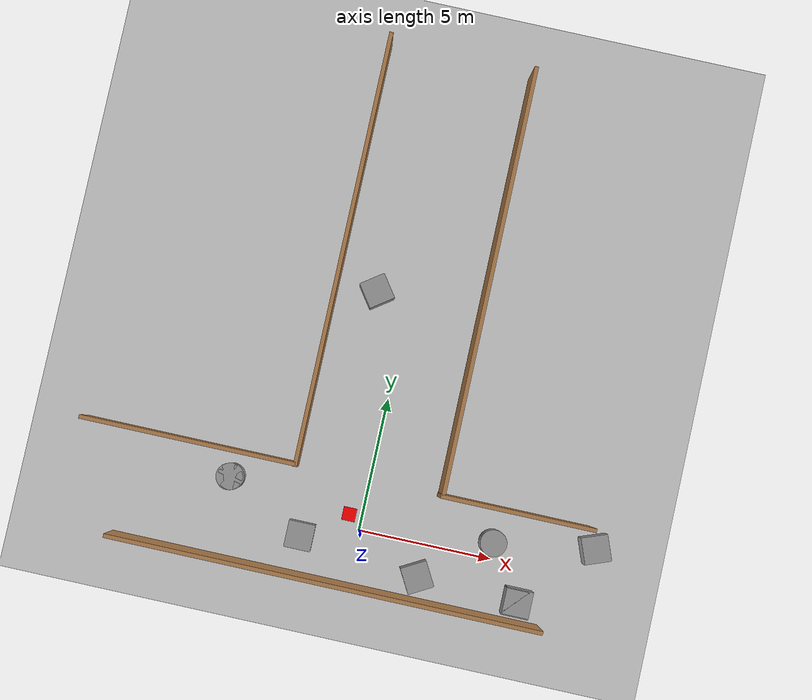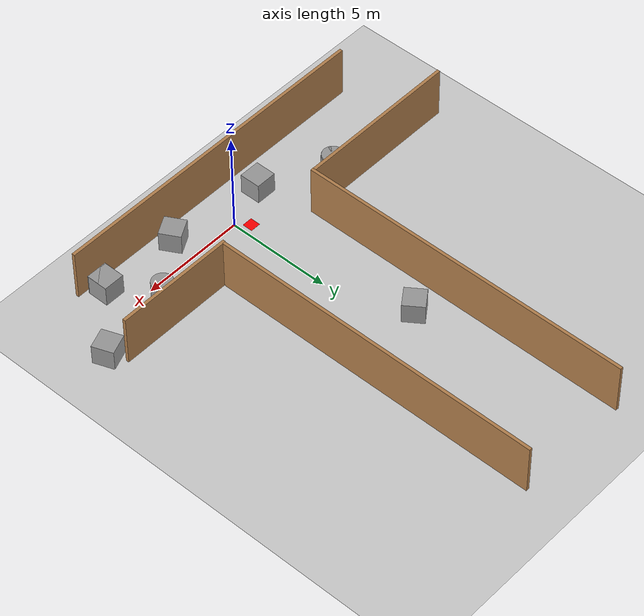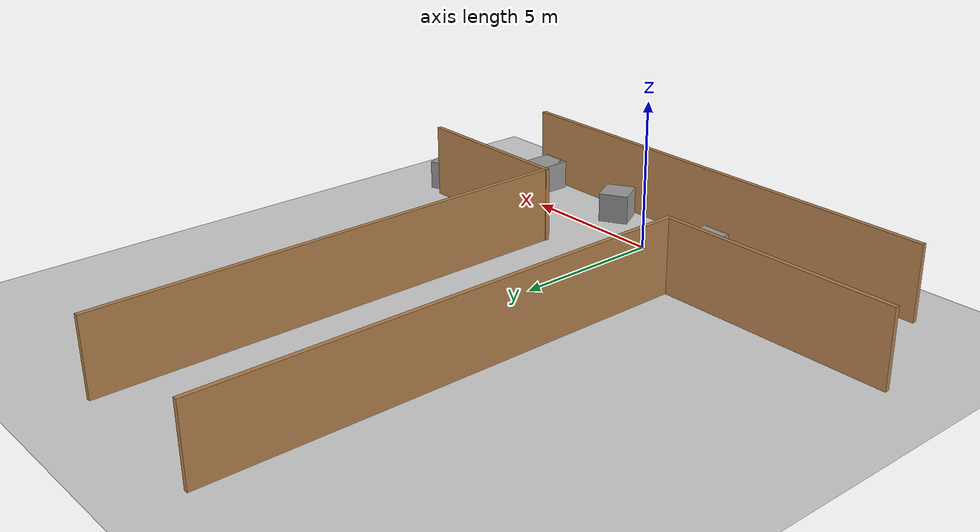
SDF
<sdf version="1.6">
 <world name="default">
  <light name="sun" type="directional">
   <pose>0 0 10 0 -0 0</pose>
   <diffuse>0.8 0.8 0.8 1</diffuse>
   <specular>0.2 0.2 0.2 1</specular>
   <attenuation>
    <range>1000</range>
    <constant>0.9</constant>
    <linear>0.01</linear>
    <quadratic>0.001</quadratic>
   </attenuation>
   <direction>-0.5 0.1 -0.9</direction>
  </light>
  <model name="ground_plane">
   <static>1</static>
   <link name="link">
    <collision name="collision">
     <geometry><plane><normal>0 0 1</normal><size>100 100</size></plane></geometry>
     <surface><friction><ode><mu>100</mu><mu2>50</mu2></ode></friction></surface>
    </collision>
    <visual name="visual">
     <cast_shadows>0</cast_shadows>
     <geometry><plane><normal>0 0 1</normal><size>100 100</size></plane></geometry>
     <material>
      <script><uri>file://media/materials/scripts/gazebo.material</uri><name>Gazebo/Grey</name></script>
     </material>
    </visual>
    <velocity_decay><linear>0</linear><angular>0</angular></velocity_decay>
   </link>
  </model>
  <physics name="default_physics" default="0" type="ode">
   <max_step_size>0.001</max_step_size>
   <real_time_factor>1</real_time_factor>
   <real_time_update_rate>1000</real_time_update_rate>
  </physics>
  <scene><ambient>0.4 0.4 0.4 1</ambient><background>0.7 0.7 0.7 1</background><shadows>1</shadows></scene>
  <spherical_coordinates>
   <surface_model>EARTH_WGS84</surface_model>
   <latitude_deg>0</latitude_deg>
   <longitude_deg>0</longitude_deg>
   <elevation>0</elevation>
   <heading_deg>0</heading_deg>
  </spherical_coordinates>
  <gravity>0 0 -9.8</gravity>
  <magnetic_field>6e-06 2.3e-05 -4.2e-05</magnetic_field>
  <atmosphere type="adiabatic"/>
  <model name="corridor">
   <pose>-1.25811 7.9813 0 0 -0 0</pose>
   <link name="Wall_0">
    <collision name="Wall_0_Collision">
     <geometry><box><size>8 0.15 2.5</size></box></geometry>
     <pose>0 0 1.25 0 -0 0</pose>
    </collision>
    <visual name="Wall_0_Visual">
     <pose>0 0 1.25 0 -0 0</pose>
     <geometry><box><size>8 0.15 2.5</size></box></geometry>
     <material>
      <script><uri>file://media/materials/scripts/gazebo.material</uri><name>Gazebo/Wood</name></script>
      <ambient>1 1 1 1</ambient>
     </material>
     <meta><layer>0</layer></meta>
    </visual>
    <pose>-5.56307 -6.0522 0 0 -0 3.14159</pose>
   </link>
   <link name="Wall_10">
    <collision name="Wall_10_Collision">
     <geometry><box><size>16.25 0.15 2.5</size></box></geometry>
     <pose>0 0 1.25 0 -0 0</pose>
    </collision>
    <visual name="Wall_10_Visual">
     <pose>0 0 1.25 0 -0 0</pose>
     <geometry><box><size>16.25 0.15 2.5</size></box></geometry>
     <material>
      <script><uri>file://media/materials/scripts/gazebo.material</uri><name>Gazebo/Wood</name></script>
      <ambient>1 1 1 1</ambient>
     </material>
     <meta><layer>0</layer></meta>
    </visual>
    <pose>-1.55489 1.98871 0 0 -0 1.5708</pose>
   </link>
   <link name="Wall_14">
    <collision name="Wall_14_Collision">
     <geometry><box><size>16 0.15 2.5</size></box></geometry>
     <pose>0 0 1.25 0 -0 0</pose>
    </collision>
    <visual name="Wall_14_Visual">
     <pose>0 0 1.25 0 -0 0</pose>
     <geometry><box><size>16 0.15 2.5</size></box></geometry>
     <material>
      <script><uri>file://media/materials/scripts/gazebo.material</uri><name>Gazebo/Wood</name></script>
      <ambient>1 1 1 1</ambient>
     </material>
     <meta><layer>0</layer></meta>
    </visual>
    <pose>3.91007 2.01717 0 0 0 -1.5708</pose>
   </link>
   <link name="Wall_16">
    <collision name="Wall_16_Collision">
     <geometry><box><size>5.75 0.15 2.5</size></box></geometry>
     <pose>0 0 1.25 0 -0 0</pose>
    </collision>
    <visual name="Wall_16_Visual">
     <pose>0 0 1.25 0 -0 0</pose>
     <geometry><box><size>5.75 0.15 2.5</size></box></geometry>
     <material>
      <script><uri>file://media/materials/scripts/gazebo.material</uri><name>Gazebo/Wood</name></script>
      <ambient>1 1 1 1</ambient>
     </material>
     <meta><layer>0</layer></meta>
    </visual>
    <pose>6.68807 -6.03492 0 0 -0 0</pose>
   </link>
   <link name="Wall_4">
    <collision name="Wall_4_Collision">
     <geometry><box><size>16.176 0.15 2.5</size></box></geometry>
     <pose>0 0 1.25 0 -0 0</pose>
    </collision>
    <visual name="Wall_4_Visual">
     <pose>0 0 1.25 0 -0 0</pose>
     <geometry><box><size>16.176 0.15 2.5</size></box></geometry>
     <material>
      <script><uri>file://media/materials/scripts/gazebo.material</uri><name>Gazebo/Wood</name></script>
      <ambient>1 1 1 1</ambient>
     </material>
     <meta><layer>0</layer></meta>
    </visual>
    <pose>0.349457 -10.0387 0 0 -0 0</pose>
   </link>
   <static>1</static>
  </model>
  <model name="unit_box_5">
   <link name="link">
    <inertial>
     <mass>1</mass>
     <inertia>
      <ixx>0.166667</ixx>
      <ixy>0</ixy>
      <ixz>0</ixz>
      <iyy>0.166667</iyy>
      <iyz>0</iyz>
      <izz>0.166667</izz>
     </inertia>
    </inertial>
    <visual name="visual">
     <geometry><box><size>1 1 1</size></box></geometry>
     <material>
      <script><name>Gazebo/Grey</name><uri>file://media/materials/scripts/gazebo.material</uri></script>
      <shader type="pixel"><normal_map>__default__</normal_map></shader>
      <ambient>0.3 0.3 0.3 1</ambient>
      <diffuse>0.7 0.7 0.7 1</diffuse>
      <specular>0.01 0.01 0.01 1</specular>
      <emissive>0 0 0 1</emissive>
     </material>
    </visual>
    <collision name="collision">
     <geometry><box><size>1 1 1</size></box></geometry>
     <surface>
      <friction>
       <ode><mu>1</mu><mu2>1</mu2><fdir1>0 0 0</fdir1><slip1>0</slip1><slip2>0</slip2></ode>
       <torsional>
        <coefficient>1</coefficient>
        <patch_radius>0</patch_radius>
        <surface_radius>0</surface_radius>
        <use_patch_radius>1</use_patch_radius>
        <ode><slip>0</slip></ode>
       </torsional>
      </friction>
      <bounce><restitution_coefficient>0</restitution_coefficient><threshold>1e+06</threshold></bounce>
      <contact>
       <collide_without_contact>0</collide_without_contact>
       <collide_without_contact_bitmask>1</collide_without_contact_bitmask>
       <collide_bitmask>1</collide_bitmask>
       <ode>
        <soft_cfm>0</soft_cfm>
        <soft_erp>0.2</soft_erp>
        <kp>1e+13</kp>
        <kd>1</kd>
        <max_vel>0.01</max_vel>
        <min_depth>0</min_depth>
       </ode>
       <bullet>
        <split_impulse>1</split_impulse>
        <split_impulse_penetration_threshold>-0.01</split_impulse_penetration_threshold>
        <soft_cfm>0</soft_cfm>
        <soft_erp>0.2</soft_erp>
        <kp>1e+13</kp>
        <kd>1</kd>
       </bullet>
      </contact>
     </surface>
    </collision>
   </link>
   <link name="link_1">
    <pose>-0.003886 -0.034962 -0 0 -0 6e-06</pose>
    <inertial>
     <mass>1</mass>
     <inertia>
      <ixx>0.166667</ixx>
      <ixy>0</ixy>
      <ixz>0</ixz>
      <iyy>0.166667</iyy>
      <iyz>0</iyz>
      <izz>0.166667</izz>
     </inertia>
    </inertial>
    <visual name="visual">
     <geometry><box><size>1 1 1</size></box></geometry>
     <material>
      <lighting>1</lighting>
      <script><uri>file://media/materials/scripts/gazebo.material</uri><name>Gazebo/Grey</name></script>
      <shader type="pixel"/>
      <ambient>0.3 0.3 0.3 1</ambient>
      <diffuse>0.7 0.7 0.7 1</diffuse>
      <specular>0.01 0.01 0.01 1</specular>
      <emissive>0 0 0 1</emissive>
     </material>
    </visual>
    <collision name="collision">
     <geometry><box><size>1 1 1</size></box></geometry>
     <surface>
      <friction>
       <ode><mu>1</mu><mu2>1</mu2><fdir1>0 0 0</fdir1><slip1>0</slip1><slip2>0</slip2></ode>
       <torsional>
        <coefficient>1</coefficient>
        <patch_radius>0</patch_radius>
        <surface_radius>0</surface_radius>
        <use_patch_radius>1</use_patch_radius>
        <ode><slip>0</slip></ode>
       </torsional>
      </friction>
      <bounce><restitution_coefficient>0</restitution_coefficient><threshold>1e+06</threshold></bounce>
      <contact>
       <collide_without_contact>0</collide_without_contact>
       <collide_without_contact_bitmask>1</collide_without_contact_bitmask>
       <collide_bitmask>1</collide_bitmask>
       <ode>
        <soft_cfm>0</soft_cfm>
        <soft_erp>0.2</soft_erp>
        <kp>1e+13</kp>
        <kd>1</kd>
        <max_vel>0.01</max_vel>
        <min_depth>0</min_depth>
       </ode>
       <bullet>
        <split_impulse>1</split_impulse>
        <split_impulse_penetration_threshold>-0.01</split_impulse_penetration_threshold>
        <soft_cfm>0</soft_cfm>
        <soft_erp>0.2</soft_erp>
        <kp>1e+13</kp>
        <kd>1</kd>
       </bullet>
      </contact>
     </surface>
    </collision>
   </link>
   <link name="link_2">
    <pose>2.41327 2.53439 0 0 -0 0.359193</pose>
    <inertial>
     <mass>1</mass>
     <inertia>
      <ixx>0.166667</ixx>
      <ixy>0</ixy>
      <ixz>0</ixz>
      <iyy>0.166667</iyy>
      <iyz>0</iyz>
      <izz>0.166667</izz>
     </inertia>
    </inertial>
    <visual name="visual">
     <geometry><box><size>1 1 1</size></box></geometry>
     <material>
      <lighting>1</lighting>
      <script><uri>file://media/materials/scripts/gazebo.material</uri><name>Gazebo/Grey</name></script>
      <shader type="pixel"/>
      <ambient>0.3 0.3 0.3 1</ambient>
      <diffuse>0.7 0.7 0.7 1</diffuse>
      <specular>0.01 0.01 0.01 1</specular>
      <emissive>0 0 0 1</emissive>
     </material>
    </visual>
    <collision name="collision">
     <geometry><box><size>1 1 1</size></box></geometry>
     <surface>
      <friction>
       <ode><mu>1</mu><mu2>1</mu2><fdir1>0 0 0</fdir1><slip1>0</slip1><slip2>0</slip2></ode>
       <torsional>
        <coefficient>1</coefficient>
        <patch_radius>0</patch_radius>
        <surface_radius>0</surface_radius>
        <use_patch_radius>1</use_patch_radius>
        <ode><slip>0</slip></ode>
       </torsional>
      </friction>
      <bounce><restitution_coefficient>0</restitution_coefficient><threshold>1e+06</threshold></bounce>
      <contact>
       <collide_without_contact>0</collide_without_contact>
       <collide_without_contact_bitmask>1</collide_without_contact_bitmask>
       <collide_bitmask>1</collide_bitmask>
       <ode>
        <soft_cfm>0</soft_cfm>
        <soft_erp>0.2</soft_erp>
        <kp>1e+13</kp>
        <kd>1</kd>
        <max_vel>0.01</max_vel>
        <min_depth>0</min_depth>
       </ode>
       <bullet>
        <split_impulse>1</split_impulse>
        <split_impulse_penetration_threshold>-0.01</split_impulse_penetration_threshold>
        <soft_cfm>0</soft_cfm>
        <soft_erp>0.2</soft_erp>
        <kp>1e+13</kp>
        <kd>1</kd>
       </bullet>
      </contact>
     </surface>
    </collision>
   </link>
   <link name="link_3">
    <pose>-3.80754 0.104796 -0 0 -0 0.510595</pose>
    <inertial>
     <mass>1</mass>
     <inertia>
      <ixx>0.166667</ixx>
      <ixy>0</ixy>
      <ixz>0</ixz>
      <iyy>0.166667</iyy>
      <iyz>0</iyz>
      <izz>0.166667</izz>
     </inertia>
    </inertial>
    <visual name="visual">
     <geometry><box><size>1 1 1</size></box></geometry>
     <material>
      <lighting>1</lighting>
      <script><uri>file://media/materials/scripts/gazebo.material</uri><name>Gazebo/Grey</name></script>
      <shader type="pixel"/>
      <ambient>0.3 0.3 0.3 1</ambient>
      <diffuse>0.7 0.7 0.7 1</diffuse>
      <specular>0.01 0.01 0.01 1</specular>
      <emissive>0 0 0 1</emissive>
     </material>
    </visual>
    <collision name="collision">
     <geometry><box><size>1 1 1</size></box></geometry>
     <surface>
      <friction>
       <ode><mu>1</mu><mu2>1</mu2><fdir1>0 0 0</fdir1><slip1>0</slip1><slip2>0</slip2></ode>
       <torsional>
        <coefficient>1</coefficient>
        <patch_radius>0</patch_radius>
        <surface_radius>0</surface_radius>
        <use_patch_radius>1</use_patch_radius>
        <ode><slip>0</slip></ode>
       </torsional>
      </friction>
      <bounce><restitution_coefficient>0</restitution_coefficient><threshold>1e+06</threshold></bounce>
      <contact>
       <collide_without_contact>0</collide_without_contact>
       <collide_without_contact_bitmask>1</collide_without_contact_bitmask>
       <collide_bitmask>1</collide_bitmask>
       <ode>
        <soft_cfm>0</soft_cfm>
        <soft_erp>0.2</soft_erp>
        <kp>1e+13</kp>
        <kd>1</kd>
        <max_vel>0.01</max_vel>
        <min_depth>0</min_depth>
       </ode>
       <bullet>
        <split_impulse>1</split_impulse>
        <split_impulse_penetration_threshold>-0.01</split_impulse_penetration_threshold>
        <soft_cfm>0</soft_cfm>
        <soft_erp>0.2</soft_erp>
        <kp>1e+13</kp>
        <kd>1</kd>
       </bullet>
      </contact>
     </surface>
    </collision>
   </link>
   <link name="link_4">
    <pose>-8.36291 0.665719 -0 0 -0 6e-06</pose>
    <inertial>
     <mass>1</mass>
     <inertia>
      <ixx>0.166667</ixx>
      <ixy>0</ixy>
      <ixz>0</ixz>
      <iyy>0.166667</iyy>
      <iyz>0</iyz>
      <izz>0.166667</izz>
     </inertia>
    </inertial>
    <visual name="visual">
     <geometry><box><size>1 1 1</size></box></geometry>
     <material>
      <lighting>1</lighting>
      <script><uri>file://media/materials/scripts/gazebo.material</uri><name>Gazebo/Grey</name></script>
      <shader type="pixel"/>
      <ambient>0.3 0.3 0.3 1</ambient>
      <diffuse>0.7 0.7 0.7 1</diffuse>
      <specular>0.01 0.01 0.01 1</specular>
      <emissive>0 0 0 1</emissive>
     </material>
    </visual>
    <collision name="collision">
     <geometry><box><size>1 1 1</size></box></geometry>
     <surface>
      <friction>
       <ode><mu>1</mu><mu2>1</mu2><fdir1>0 0 0</fdir1><slip1>0</slip1><slip2>0</slip2></ode>
       <torsional>
        <coefficient>1</coefficient>
        <patch_radius>0</patch_radius>
        <surface_radius>0</surface_radius>
        <use_patch_radius>1</use_patch_radius>
        <ode><slip>0</slip></ode>
       </torsional>
      </friction>
      <bounce><restitution_coefficient>0</restitution_coefficient><threshold>1e+06</threshold></bounce>
      <contact>
       <collide_without_contact>0</collide_without_contact>
       <collide_without_contact_bitmask>1</collide_without_contact_bitmask>
       <collide_bitmask>1</collide_bitmask>
       <ode>
        <soft_cfm>0</soft_cfm>
        <soft_erp>0.2</soft_erp>
        <kp>1e+13</kp>
        <kd>1</kd>
        <max_vel>0.01</max_vel>
        <min_depth>0</min_depth>
       </ode>
       <bullet>
        <split_impulse>1</split_impulse>
        <split_impulse_penetration_threshold>-0.01</split_impulse_penetration_threshold>
        <soft_cfm>0</soft_cfm>
        <soft_erp>0.2</soft_erp>
        <kp>1e+13</kp>
        <kd>1</kd>
       </bullet>
      </contact>
     </surface>
    </collision>
   </link>
   <link name="link_5">
    <pose>-7.52388 10.1294 -0 0 0 -0.952427</pose>
    <inertial>
     <mass>1</mass>
     <inertia>
      <ixx>0.166667</ixx>
      <ixy>0</ixy>
      <ixz>0</ixz>
      <iyy>0.166667</iyy>
      <iyz>0</iyz>
      <izz>0.166667</izz>
     </inertia>
    </inertial>
    <visual name="visual">
     <geometry><box><size>1 1 1</size></box></geometry>
     <material>
      <lighting>1</lighting>
      <script><uri>file://media/materials/scripts/gazebo.material</uri><name>Gazebo/Grey</name></script>
      <shader type="pixel"><normal_map>__default__</normal_map></shader>
      <ambient>0.3 0.3 0.3 1</ambient>
      <diffuse>0.7 0.7 0.7 1</diffuse>
      <specular>0.01 0.01 0.01 1</specular>
      <emissive>0 0 0 1</emissive>
     </material>
    </visual>
    <collision name="collision">
     <geometry><box><size>1 1 1</size></box></geometry>
     <surface>
      <friction>
       <ode><mu>1</mu><mu2>1</mu2><fdir1>0 0 0</fdir1><slip1>0</slip1><slip2>0</slip2></ode>
       <torsional>
        <coefficient>1</coefficient>
        <patch_radius>0</patch_radius>
        <surface_radius>0</surface_radius>
        <use_patch_radius>1</use_patch_radius>
        <ode><slip>0</slip></ode>
       </torsional>
      </friction>
      <bounce><restitution_coefficient>0</restitution_coefficient><threshold>1e+06</threshold></bounce>
      <contact>
       <collide_without_contact>0</collide_without_contact>
       <collide_without_contact_bitmask>1</collide_without_contact_bitmask>
       <collide_bitmask>1</collide_bitmask>
       <ode>
        <soft_cfm>0</soft_cfm>
        <soft_erp>0.2</soft_erp>
        <kp>1e+13</kp>
        <kd>1</kd>
        <max_vel>0.01</max_vel>
        <min_depth>0</min_depth>
       </ode>
       <bullet>
        <split_impulse>1</split_impulse>
        <split_impulse_penetration_threshold>-0.01</split_impulse_penetration_threshold>
        <soft_cfm>0</soft_cfm>
        <soft_erp>0.2</soft_erp>
        <kp>1e+13</kp>
        <kd>1</kd>
       </bullet>
      </contact>
     </surface>
    </collision>
   </link>
   <static>0</static>
   <pose>6.23733 -1.29492 0.5 0 0 -6e-06</pose>
  </model>
  <model name="unit_cylinder_2">
   <link name="link">
    <inertial>
     <mass>1</mass>
     <inertia><ixx>0.145833</ixx><ixy>0</ixy><ixz>0</ixz><iyy>0.145833</iyy><iyz>0</iyz><izz>0.125</izz></inertia>
    </inertial>
    <visual name="visual">
     <geometry><cylinder><radius>0.5</radius><length>1</length></cylinder></geometry>
     <material>
      <script><name>Gazebo/Grey</name><uri>file://media/materials/scripts/gazebo.material</uri></script>
      <shader type="pixel"/>
      <ambient>0.3 0.3 0.3 1</ambient>
      <diffuse>0.7 0.7 0.7 1</diffuse>
      <specular>0.01 0.01 0.01 1</specular>
      <emissive>0 0 0 1</emissive>
     </material>
    </visual>
    <collision name="collision">
     <geometry><cylinder><radius>0.5</radius><length>1</length></cylinder></geometry>
     <surface>
      <friction>
       <ode><mu>1</mu><mu2>1</mu2><fdir1>0 0 0</fdir1><slip1>0</slip1><slip2>0</slip2></ode>
       <torsional>
        <coefficient>1</coefficient>
        <patch_radius>0</patch_radius>
        <surface_radius>0</surface_radius>
        <use_patch_radius>1</use_patch_radius>
        <ode><slip>0</slip></ode>
       </torsional>
      </friction>
      <bounce><restitution_coefficient>0</restitution_coefficient><threshold>1e+06</threshold></bounce>
      <contact>
       <collide_without_contact>0</collide_without_contact>
       <collide_without_contact_bitmask>1</collide_without_contact_bitmask>
       <collide_bitmask>1</collide_bitmask>
       <ode>
        <soft_cfm>0</soft_cfm>
        <soft_erp>0.2</soft_erp>
        <kp>1e+13</kp>
        <kd>1</kd>
        <max_vel>0.01</max_vel>
        <min_depth>0</min_depth>
       </ode>
       <bullet>
        <split_impulse>1</split_impulse>
        <split_impulse_penetration_threshold>-0.01</split_impulse_penetration_threshold>
        <soft_cfm>0</soft_cfm>
        <soft_erp>0.2</soft_erp>
        <kp>1e+13</kp>
        <kd>1</kd>
       </bullet>
      </contact>
     </surface>
    </collision>
   </link>
   <link name="link_7">
    <pose>0.050684 0.020416 -0 0 -0 0</pose>
    <inertial>
     <mass>1</mass>
     <inertia><ixx>0.145833</ixx><ixy>0</ixy><ixz>0</ixz><iyy>0.145833</iyy><iyz>0</iyz><izz>0.125</izz></inertia>
    </inertial>
    <visual name="visual">
     <geometry><cylinder><radius>0.5</radius><length>1</length></cylinder></geometry>
     <material>
      <lighting>1</lighting>
      <script><uri>file://media/materials/scripts/gazebo.material</uri><name>Gazebo/Grey</name></script>
      <shader type="pixel"/>
      <ambient>0.3 0.3 0.3 1</ambient>
      <diffuse>0.7 0.7 0.7 1</diffuse>
      <specular>0.01 0.01 0.01 1</specular>
      <emissive>0 0 0 1</emissive>
     </material>
    </visual>
    <collision name="collision">
     <geometry><cylinder><radius>0.5</radius><length>1</length></cylinder></geometry>
     <surface>
      <friction>
       <ode><mu>1</mu><mu2>1</mu2><fdir1>0 0 0</fdir1><slip1>0</slip1><slip2>0</slip2></ode>
       <torsional>
        <coefficient>1</coefficient>
        <patch_radius>0</patch_radius>
        <surface_radius>0</surface_radius>
        <use_patch_radius>1</use_patch_radius>
        <ode><slip>0</slip></ode>
       </torsional>
      </friction>
      <bounce><restitution_coefficient>0</restitution_coefficient><threshold>1e+06</threshold></bounce>
      <contact>
       <collide_without_contact>0</collide_without_contact>
       <collide_without_contact_bitmask>1</collide_without_contact_bitmask>
       <collide_bitmask>1</collide_bitmask>
       <ode>
        <soft_cfm>0</soft_cfm>
        <soft_erp>0.2</soft_erp>
        <kp>1e+13</kp>
        <kd>1</kd>
        <max_vel>0.01</max_vel>
        <min_depth>0</min_depth>
       </ode>
       <bullet>
        <split_impulse>1</split_impulse>
        <split_impulse_penetration_threshold>-0.01</split_impulse_penetration_threshold>
        <soft_cfm>0</soft_cfm>
        <soft_erp>0.2</soft_erp>
        <kp>1e+13</kp>
        <kd>1</kd>
       </bullet>
      </contact>
     </surface>
    </collision>
   </link>
   <link name="link_8">
    <pose>10.0449 -0.292399 -0 0 -0 0</pose>
    <inertial>
     <mass>1</mass>
     <inertia><ixx>0.145833</ixx><ixy>0</ixy><ixz>0</ixz><iyy>0.145833</iyy><iyz>0</iyz><izz>0.125</izz></inertia>
    </inertial>
    <visual name="visual">
     <geometry><cylinder><radius>0.5</radius><length>1</length></cylinder></geometry>
     <material>
      <lighting>1</lighting>
      <script><uri>file://media/materials/scripts/gazebo.material</uri><name>Gazebo/Grey</name></script>
      <shader type="pixel"/>
      <ambient>0.3 0.3 0.3 1</ambient>
      <diffuse>0.7 0.7 0.7 1</diffuse>
      <specular>0.01 0.01 0.01 1</specular>
      <emissive>0 0 0 1</emissive>
     </material>
    </visual>
    <collision name="collision">
     <geometry><cylinder><radius>0.5</radius><length>1</length></cylinder></geometry>
     <surface>
      <friction>
       <ode><mu>1</mu><mu2>1</mu2><fdir1>0 0 0</fdir1><slip1>0</slip1><slip2>0</slip2></ode>
       <torsional>
        <coefficient>1</coefficient>
        <patch_radius>0</patch_radius>
        <surface_radius>0</surface_radius>
        <use_patch_radius>1</use_patch_radius>
        <ode><slip>0</slip></ode>
       </torsional>
      </friction>
      <bounce><restitution_coefficient>0</restitution_coefficient><threshold>1e+06</threshold></bounce>
      <contact>
       <collide_without_contact>0</collide_without_contact>
       <collide_without_contact_bitmask>1</collide_without_contact_bitmask>
       <collide_bitmask>1</collide_bitmask>
       <ode>
        <soft_cfm>0</soft_cfm>
        <soft_erp>0.2</soft_erp>
        <kp>1e+13</kp>
        <kd>1</kd>
        <max_vel>0.01</max_vel>
        <min_depth>0</min_depth>
       </ode>
       <bullet>
        <split_impulse>1</split_impulse>
        <split_impulse_penetration_threshold>-0.01</split_impulse_penetration_threshold>
        <soft_cfm>0</soft_cfm>
        <soft_erp>0.2</soft_erp>
        <kp>1e+13</kp>
        <kd>1</kd>
       </bullet>
      </contact>
     </surface>
    </collision>
   </link>
   <static>0</static>
   <pose>-5.13375 0.934833 0.499994 2e-06 2e-06 0</pose>
  </model>
  <model name="goal">
   <link name="goal_box">
    <visual name="goal_box">
     <pose>0 0 0.0005 0 -0 0</pose>
     <geometry><box><size>0.5 0.5 0.001</size></box></geometry>
     <material>
      <script><uri>file://media/materials/scripts/gazebo.material</uri><name>Gazebo/Grey</name></script>
      <ambient>1 0 0 1</ambient>
     </material>
    </visual>
   </link>
   <static>1</static>
   <pose>-0.5 0.5 0 0 -0 0</pose>
  </model>
 </world>
</sdf>
